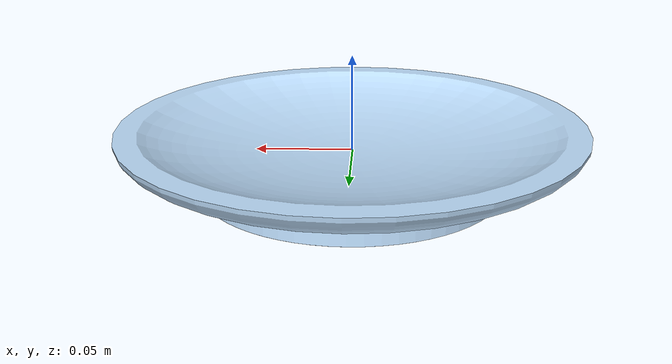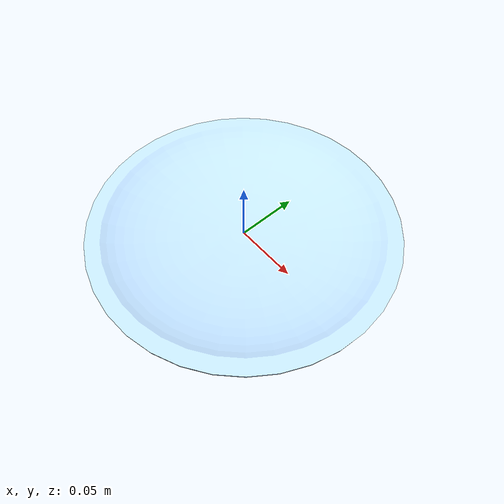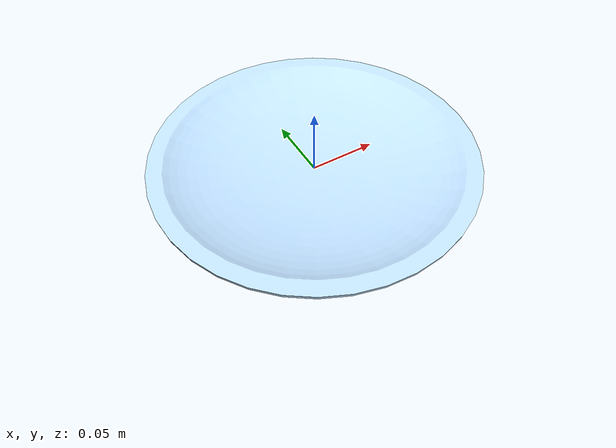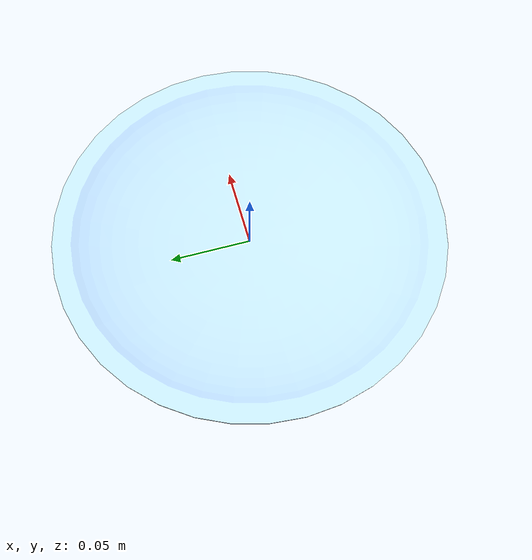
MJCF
<?xml version="1.0"?>
<mujoco model="plate">

    <asset>

        <!-- Plate mesh -->
        <mesh
            name="plate_mesh"
            file="meshes/plate.stl"
            scale="1 1 1"/>

        <!-- Plate material -->
        <material
            name="plate_mat"
            rgba="0.75 0.88 1.0 1"
            specular="0.2"
            shininess="0.4"/>

    </asset>

    <worldbody>
        <body>
            <body name="object">

                <geom pos="0 0 0" mesh="plate_mesh" type="mesh" solimp="0.998 0.998 0.001" solref="0.001 1" density="800" friction="1.2 0.005 0.0001"  material="plate_mat" group="0" condim="4"/>
                <!-- Required robosuite sites -->
            </body>

            <site
                name="bottom_site"
                pos="0 0 -0.01"
                size="0.005"
                rgba="0 0 0 0"/>

            <site
                name="top_site"
                pos="0 0 0.015"
                size="0.005"
                rgba="0 0 0 0"/>

            <site
                name="horizontal_radius_site"
                pos="0.04 0 0"
                size="0.005"
                rgba="0 0 0 0"/>

        </body>

    </worldbody>

</mujoco>
